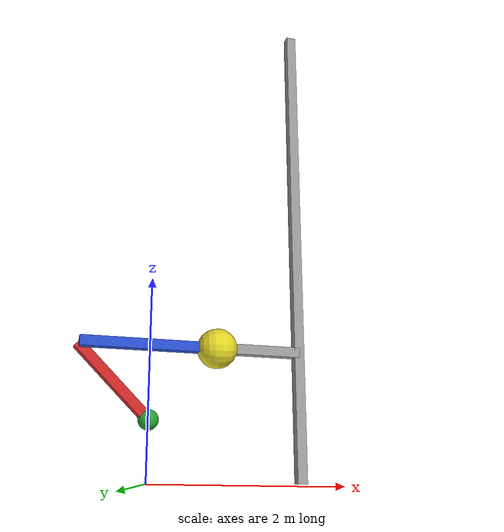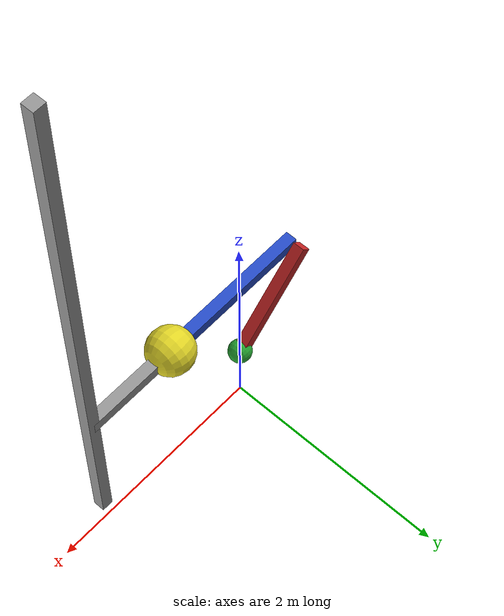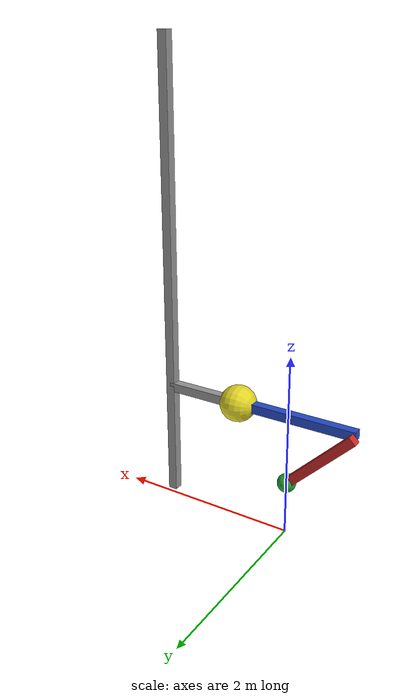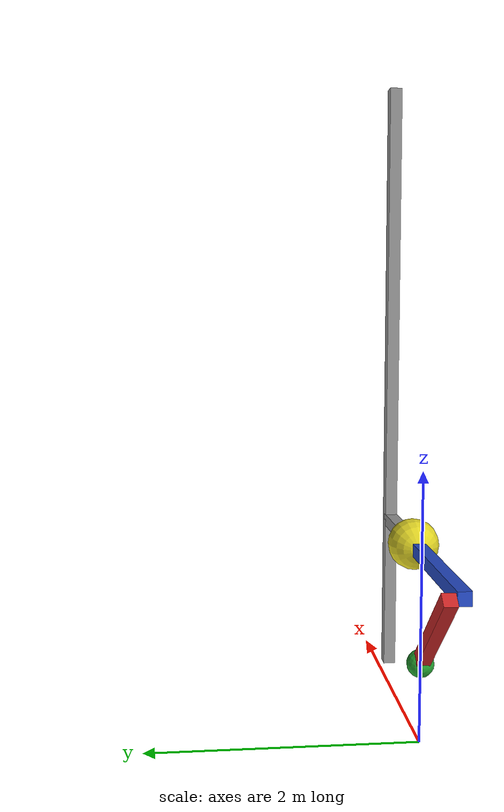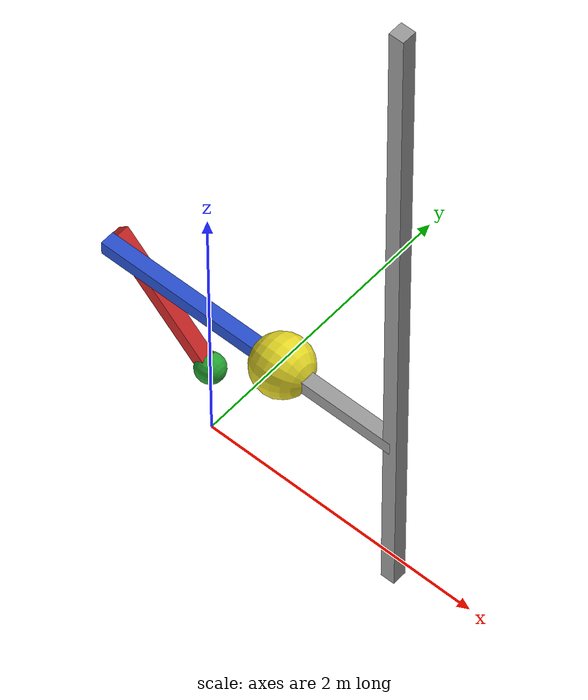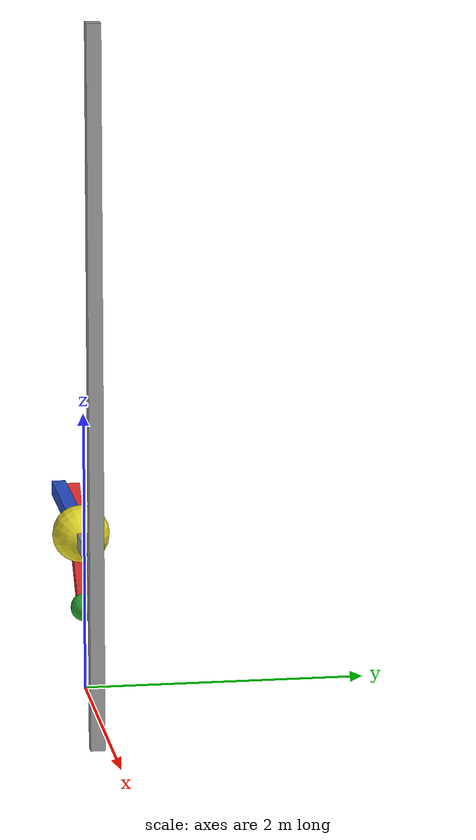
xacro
<?xml version="1.0"?>

<robot name="my_robot" xmlns:xacro="http://ros.org/wiki/xacro">

  <xacro:property name="pi" value="3.1415926535897931" />

  <link name="world"/>

  <joint name="base_joint" type="fixed">
    <parent link="world"/>
    <child link="base_link"/>
  </joint>

  <link name="base_link">
    <inertial>
      <mass value="1.0"/>
      <origin xyz="1.5 -0.1 2.5" rpy="0 0 0"/>
      <inertia ixx="1.0" ixy="0.0" ixz="0.0" iyy="1.0" iyz="0.0" izz="1.0"/>
    </inertial>
    <visual>
      <origin xyz="1.5 -0.1 2.5" rpy="0 0 0"/>
      <geometry>
        <box size="0.1 0.1 5.0"/>
      </geometry>
    </visual>
    <collision>
      <origin xyz="1.5 -0.1 2.5" rpy="0 0 0"/>
      <geometry>
        <box size="0.1 0.1 5.0"/>
      </geometry>
    </collision>
  </link>
  <gazebo reference="base_link">
    <material>Gazebo/Gray</material>
  </gazebo>

  <joint name="guide1_joint" type="prismatic">
    <parent link="base_link"/>
    <child link="guide1_link"/>
    <limit upper="4.0" lower="-0.3" effort="1000" velocity="100"/>
    <origin xyz="1.5 -0.1 1.3" rpy="0 ${-1*pi/2} 0"/>
    <dynamics damping="0.1"/>
  </joint>

  <link name="guide1_link">
    <inertial>
      <mass value="0.001"/>
      <origin xyz="0 0 0.35" rpy="0 ${pi/2} 0"/>
      <inertia ixx="1.0" ixy="0.0" ixz="0.0" iyy="1.0" iyz="0.0" izz="1.0"/>
    </inertial>
    <visual>
      <origin xyz="0 0 0.35" rpy="0 ${pi/2} 0"/>
      <geometry>
        <box size="0.7 0.1 0.1"/>
      </geometry>
    </visual>
    <collision>
      <origin xyz="0 0 0.35" rpy="0 ${pi/2} 0"/>
      <geometry>
        <box size="0.7 0.1 0.1"/>
      </geometry>
    </collision>
  </link>
  <gazebo reference="guide1_link">
    <material>Gazebo/Gray</material>
  </gazebo>

  <joint name="arm3_joint" type="fixed">
    <parent link="guide1_link"/>
    <child link="arm3_link"/>
  </joint>

  <link name="arm3_link">
    <inertial>
      <mass value="5"/>
      <origin xyz="0 0 0.85" rpy="0 0 0"/>
      <inertia ixx="1.0" ixy="0.0" ixz="0.0" iyy="1.0" iyz="0.0" izz="1.0"/>
    </inertial>
    <visual>
      <origin xyz="0 0 0.85" rpy="0 0 0"/>
      <geometry>
        <sphere radius="0.2"/>
      </geometry>
    </visual>
    <collision>
      <origin xyz="0 0 0.85" rpy="0 0 0"/>
      <geometry>
        <sphere radius="0.2"/>
      </geometry>
    </collision>
  </link>
  <gazebo reference="arm3_link">
    <material>Gazebo/Yellow</material>
  </gazebo>

  <joint name="arm2_joint" type="continuous">
    <parent link="arm3_link"/>
    <child link="arm2_link"/>
    <axis xyz="0 1 0"/>
    <origin xyz="0 0 1" rpy="0 0 0"/>
    <dynamics damping="0.1"/>
  </joint>

  <link name="arm2_link">
    <inertial>
      <mass value="1.0"/>
      <origin xyz="0 0 0.6" rpy="0 ${pi/2} 0"/>
      <inertia ixx="1.0" ixy="0.0" ixz="0.0" iyy="1.0" iyz="0.0" izz="1.0"/>
    </inertial>
    <visual>
      <origin xyz="0 0 0.6" rpy="0 ${pi/2} 0"/>
      <geometry>
        <box size="1.2 0.1 0.1"/>
      </geometry>
    </visual>
    <collision>
      <origin xyz="0 0 0.6" rpy="0 ${pi/2} 0"/>
      <geometry>
        <box size="1.2 0.1 0.1"/>
      </geometry>
    </collision>
  </link>
  <gazebo reference="arm2_link">
    <material>Gazebo/Blue</material>
  </gazebo>

  <joint name="arm1_joint" type="revolute">
    <parent link="arm2_link"/>
    <child link="arm1_link"/>
    <limit upper="2.0" lower="0.0" effort="1000" velocity="10"/>
    <axis xyz="0 1 0"/>
    <origin xyz="0 0.1 1.2071" rpy="0 0 0"/>
    <dynamics damping="0.1"/>
  </joint>
  <transmission name="arm1_trans">
    <type>transmission_interface/SimpleTransmission</type>
    <joint name="arm1_joint">
      <hardwareInterface>hardware_interface/EffortJointInterface</hardwareInterface>
    </joint>
    <actuator name="arm1_motor">
       <hardwareInterface>hardware_interface/EffortJointInterface</hardwareInterface>
       <mechanismReduction>1</mechanismReduction>
    </actuator>
  </transmission>

  <link name="arm1_link">
    <inertial>
      <origin xyz="-0.3536 0 -0.3536" rpy="0 0.7854 0"/>
      <mass value="1.0"/>
      <inertia ixx="1.0" ixy="0.0" ixz="0.0" iyy="1.0" iyz="0.0" izz="1.0"/>
    </inertial>
    <visual>
      <origin xyz="-0.3536 0 -0.3536" rpy="0 0.7854 0"/>
      <geometry>
        <box size="0.1 0.1 1.0"/>
      </geometry>
    </visual>
    <collision>
      <origin xyz="-0.3536 0 -0.3536" rpy="0 0.7854 0"/>
      <geometry>
        <box size="0.1 0.1 1.0"/>
      </geometry>
    </collision>
  </link>
  <gazebo reference="arm1_link">
    <material>Gazebo/Red</material>
  </gazebo>

  <joint name="arm0_joint" type="fixed">
    <parent link="arm1_link"/>
    <child link="arm0_link"/>
  </joint>

  <link name="arm0_link">
    <inertial>
      <mass value="0.001"/>
      <origin xyz="-0.7071 0 -0.7071" rpy="0 0 0"/>
      <inertia ixx="1.0" ixy="0.0" ixz="0.0" iyy="1.0" iyz="0.0" izz="1.0"/>
    </inertial>
    <visual>
      <origin xyz="-0.7071 0 -0.7071" rpy="0 0 0"/>
      <geometry>
        <sphere radius="0.1"/>
      </geometry>
    </visual>
    <collision>
      <origin xyz="-0.7071 0 -0.7071" rpy="0 0 0"/>
      <geometry>
        <sphere radius="0.1"/>
      </geometry>
    </collision>
  </link>
  <gazebo reference="arm0_link">
    <material>Gazebo/Green</material>
  </gazebo>

  <gazebo>
    <plugin name="gazebo_ros_control" filename="libgazebo_ros_control.so">
      <robotNamespace>/my_robot</robotNamespace>
    </plugin>
  </gazebo>
</robot>
